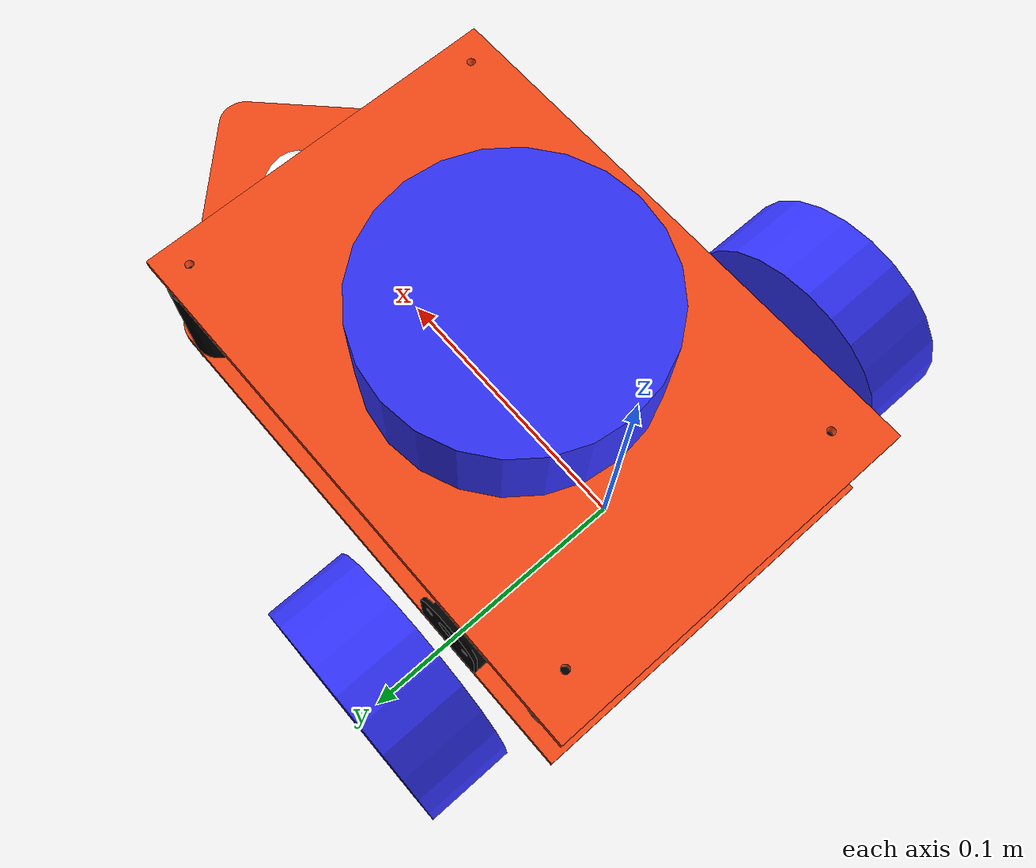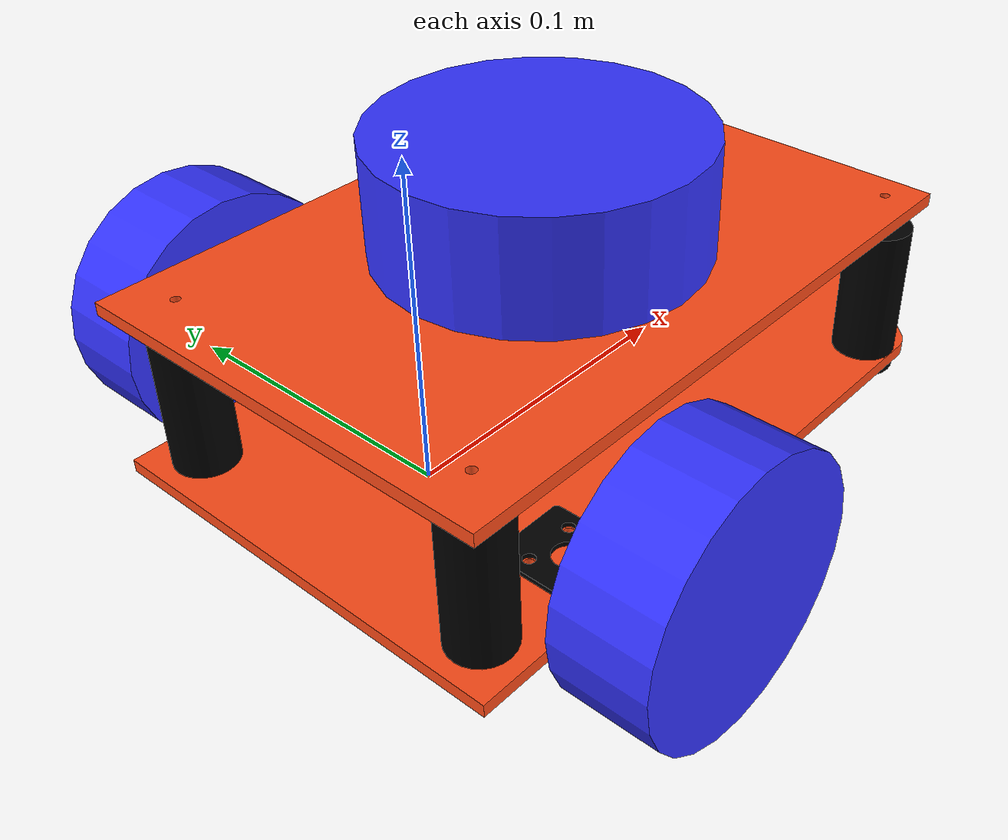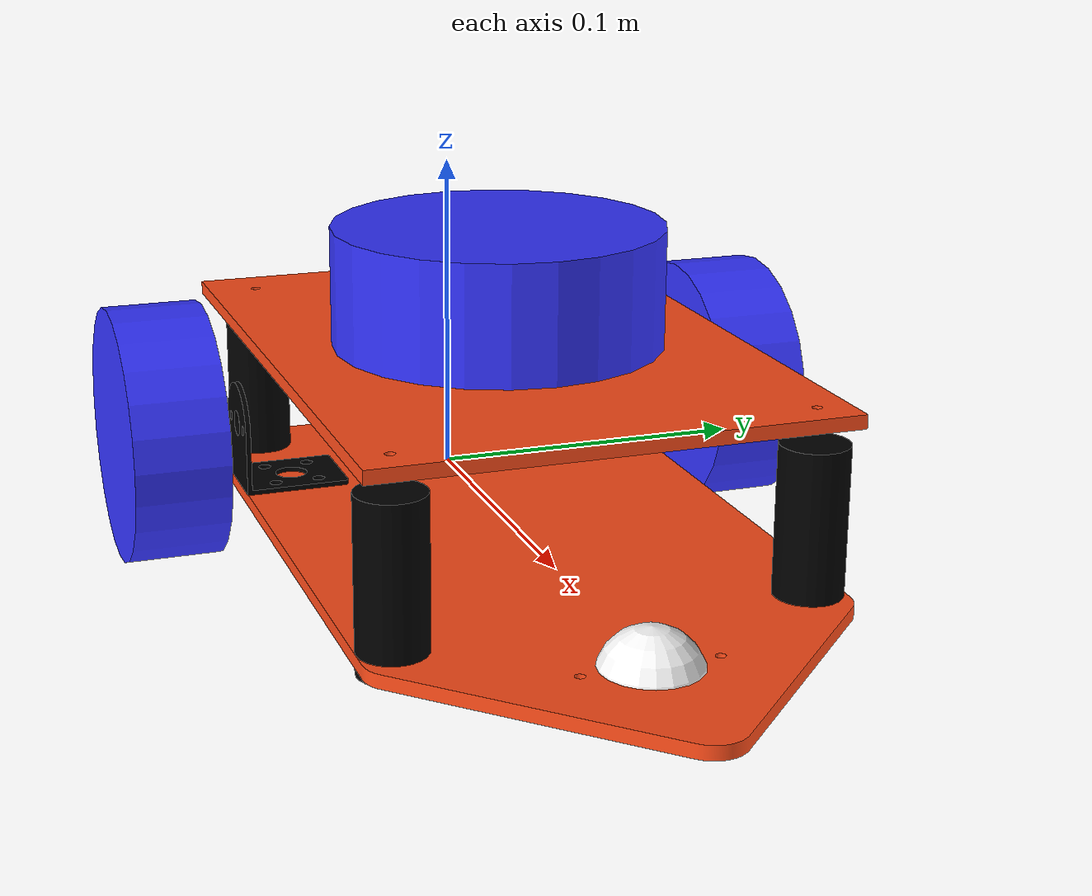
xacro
<?xml version="1.0"?>
<robot xmlns:xacro="http://www.ros.org/wiki/xacro"  name="robot">

    <xacro:arg name="use_ros2_control" default="true"/>
    <xacro:arg name="sim_mode" default="false"/>
    <xacro:if value="$(arg use_ros2_control)">
        <xacro:include filename="ros2_control.xacro" />
    </xacro:if>
    <xacro:unless value="$(arg use_ros2_control)">
        <xacro:include filename="gazebo_control.xacro" />
    </xacro:unless>
    <xacro:include filename="robot_core.xacro" />

</robot>

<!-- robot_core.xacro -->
<robot xmlns:xacro="http://www.ros.org/wiki/xacro" >

    <xacro:include filename="inertial_macros.xacro"/>

    <xacro:property name="chassis_length" value="0.26586"/>
    <xacro:property name="chassis_width" value="0.14"/>
    <xacro:property name="chassis_height" value="0.15"/>
    <xacro:property name="chassis_mass" value="1.0"/>
    <xacro:property name="wheel_radius" value="0.04"/>
    <xacro:property name="wheel_thickness" value="0.0293"/>
    <xacro:property name="wheel_mass" value="0.2"/>
    <xacro:property name="wheel_offset_x" value="0.05065"/>
    <xacro:property name="wheel_offset_y" value="0.08715"/>
    <xacro:property name="wheel_offset_z" value="0.02725"/>
    <xacro:property name="caster_wheel_radius" value="0.0205"/>
    <xacro:property name="caster_wheel_mass" value="0.1"/>
    <xacro:property name="tussenstuk_length" value="0.0055"/>
    <xacro:property name="tussenstuk_width" value="0.0055"/>
    <xacro:property name="tussenstuk_height" value="0.0715"/>

    <material name="white">
        <color rgba="1 1 1 1" />
    </material>

    <material name="orange">
        <color rgba="1 0.3 0.1 1"/>
    </material>

    <material name="blue">
        <color rgba="0.2 0.2 1 1"/>
    </material>

    <material name="black">
        <color rgba="0 0 0 1"/>
    </material>

    <!-- BASE LINK -->
    <link name="base_link">
    </link>
    <!-- footprint LINK -->
    <joint name="base_footprint_joint" type="fixed">
        <parent link="base_link"/>
        <child link="base_footprint"/>
        <origin xyz="0 0 0" rpy="0 0 0"/>
    </joint>
    <link name="base_footprint">
    </link>

    <!-- CHASSIS BOTTOM LINK -->
    <joint name="chassis_bottom_joint" type="fixed">
        <parent link="base_link"/>
        <child link="chassis_bottom"/>
        <origin xyz="0 0 0"/>
    </joint>

    <link name="chassis_bottom">
        <visual>
            <origin xyz="0.09435 0 0" rpy="0 0 ${pi}"/>
            <geometry>
                <mesh filename="file://$(find my_bot)/meshes/Onderstel.stl" scale="0.001 0.001 0.001"/>
            </geometry>
            <material name="orange"/>
        </visual>
        <collision>
            <origin xyz="0.09435 0 0" rpy="0 0 ${pi}"/>
            <geometry>
                <box size="0.3 0.14 0.01"/>
            </geometry>
        </collision>
        <xacro:inertial_box mass="0.072" x="${chassis_length}" y="${chassis_width}" z="${chassis_height}">
            <origin xyz="${chassis_length/2} 0 ${chassis_height/2}" rpy="0 0 0"/>
        </xacro:inertial_box>
    </link>

    <gazebo reference="chassis_bottom">
        <material>Gazebo/Wood</material>
    </gazebo>

    <!-- LEFT MOTOR BEUGEL LINK  -->
    <joint name="chassis_beugel_left_link" type="fixed">
        <parent link="base_link"/>
        <child link="chassis_beugel_left"/>
        <origin xyz="-0.013 -0.06875 0" rpy="1.57079632679 0.0 0.0"/>
    </joint>

    <link name="chassis_beugel_left">
        <visual>
            <origin xyz="0 0 0"/>
            <geometry>
                <mesh filename="file://$(find my_bot)/meshes/MotorBeugel.stl" scale="0.001 0.001 0.001"/>
            </geometry>
            <material name="black"/>
        </visual>
        <collision>
            <origin xyz="0 0 0"/>
            <geometry>
                <mesh filename="file://$(find my_bot)/meshes/MotorBeugel.stl" scale="0.001 0.001 0.001"/>
            </geometry>
        </collision>
        <xacro:inertial_box mass="0.053" x="0.200" y="0.0041" z="0.140">
            <origin xyz="0.100 0 0.070" rpy="0 0 0"/>
        </xacro:inertial_box>
    </link>

    <gazebo reference="chassis_beugel_left">
        <material>Gazebo/FlatBlack</material>
    </gazebo>

    <!-- RIGHT MOTOR BEUGEL LINK -->
    <joint name="chassis_beugel_right_link" type="fixed">
        <parent link="base_link"/>
        <child link="chassis_beugel_right"/>
        <origin xyz="0.013 0.06875 0" rpy="1.57079632679 0 3.14159265359"/>
    </joint>

    <link name="chassis_beugel_right">
        <visual>
            <origin xyz="0 0 0"/>
            <geometry>
                <mesh filename="file://$(find my_bot)/meshes/MotorBeugel.stl" scale="0.001 0.001 0.001"/>
            </geometry>
            <material name="black"/>
        </visual>
        <collision>
            <origin xyz="0 0 0"/>
            <geometry>
                <mesh filename="file://$(find my_bot)/meshes/MotorBeugel.stl" scale="0.001 0.001 0.001"/>
            </geometry>
        </collision>
        <xacro:inertial_box mass="0.053" x="0.200" y="0.0041" z="0.140">
            <origin xyz="0.100 0 0.070" rpy="0 0 0"/>
        </xacro:inertial_box>
    </link>

    <gazebo reference="chassis_beugel_right">
        <material>Gazebo/FlatBlack</material>
    </gazebo>

    <!-- CHASSIS TUSSEN LINK 1 -->
    <joint name="chassis_tussen_one_joint" type="fixed">
        <parent link="base_link"/>
        <child link="chassis_tussen_one"/>
        <origin xyz="-0.03565 0.055 -0.006"/>
    </joint>

    <link name="chassis_tussen_one">
        <visual>
            <origin xyz="0 0 0.025"/>
            <geometry>
                <cylinder radius="0.01" length= "0.05"/>
            </geometry>
            <material name="black"/>
        </visual>
        <collision>
            <origin xyz="0 0 0.025"/>
            <geometry>
                <cylinder radius="0.01" length= "0.05"/>
            </geometry>
        </collision>
        <xacro:inertial_box mass="0.004" x="${tussenstuk_length}" y="${tussenstuk_width}" z="${tussenstuk_height}">
            <origin xyz="${tussenstuk_length/2} 0 ${tussenstuk_height/2}" rpy="0 0 0"/>
        </xacro:inertial_box>
    </link>

    <gazebo reference="chassis_tussen_one">
        <material>Gazebo/Grey</material>
    </gazebo>

    <!-- CHASSIS TUSSEN LINK 2 -->
    <joint name="chassis_tussen_two_joint" type="fixed">
        <parent link="base_link"/>
        <child link="chassis_tussen_two"/>
        <origin xyz="-0.03565 -0.055 -0.006"/>
    </joint>

    <link name="chassis_tussen_two">
        <visual>
            <origin xyz="0 0 0.025"/>
            <geometry>
                <cylinder radius="0.01" length= "0.05"/>
            </geometry>
            <material name="black"/>
        </visual>
        <collision>
            <origin xyz="0 0 0"/>
            <geometry>
                <mesh filename="file://$(find my_bot)/meshes/Tussenstuk.stl" scale="0.001 0.001 0.001"/>
            </geometry>
        </collision>
        <xacro:inertial_box mass="0.004" x="${tussenstuk_length}" y="${tussenstuk_width}" z="${tussenstuk_height}">
            <origin xyz="${tussenstuk_length/2} 0 ${tussenstuk_height/2}" rpy="0 0 0"/>
        </xacro:inertial_box>
    </link>

    <gazebo reference="chassis_tussen_two">
        <material>Gazebo/Grey</material>
    </gazebo>

    <!-- CHASSIS TUSSEN LINK 3 -->
    <joint name="chassis_tussen_three_joint" type="fixed">
        <parent link="base_link"/>
        <child link="chassis_tussen_three"/>
        <origin xyz="0.13935 0.060 -0.006"/>
    </joint>

    <link name="chassis_tussen_three">
        <visual>
            <origin xyz="0 0 0.025"/>
            <geometry>
                <cylinder radius="0.01" length= "0.05"/>
            </geometry>
            <material name="black"/>
        </visual>
        <collision>
            <origin xyz="0 0 0.025"/>
            <geometry>
                <cylinder radius="0.01" length= "0.05"/>
            </geometry>
        </collision>
        <xacro:inertial_box mass="0.004" x="${tussenstuk_length}" y="${tussenstuk_width}" z="${tussenstuk_height}">
            <origin xyz="${tussenstuk_length/2} 0 ${tussenstuk_height/2}" rpy="0 0 0"/>
        </xacro:inertial_box>
    </link>

    <gazebo reference="chassis_tussen_three">
        <material>Gazebo/Grey</material>
    </gazebo>

    <!-- CHASSIS TUSSEN LINK 4 -->
    <joint name="chassis_tussen_four_joint" type="fixed">
        <parent link="base_link"/>
        <child link="chassis_tussen_four"/>
        <origin xyz="0.13935 -0.060 -0.006"/>
    </joint>

    <link name="chassis_tussen_four">
        <visual>
            <origin xyz="0 0 0.025"/>
            <geometry>
                <cylinder radius="0.01" length= "0.05"/>
            </geometry>
            <material name="black"/>
        </visual>
        <collision>
            <origin xyz="0 0 0.025"/>
            <geometry>
                <cylinder radius="0.01" length= "0.05"/>
            </geometry>
        </collision>
        <xacro:inertial_box mass="0.004" x="${tussenstuk_length}" y="${tussenstuk_width}" z="${tussenstuk_height}">
            <origin xyz="${tussenstuk_length/2} 0 ${tussenstuk_height/2}" rpy="0 0 0"/>
        </xacro:inertial_box>
    </link>

    <gazebo reference="chassis_tussen_four">
        <material>Gazebo/Grey</material>
    </gazebo>

    <!-- CHASSIS MID LINK -->
    <joint name="chassis_mid_joint" type="fixed">
        <parent link="base_link"/>
        <child link="chassis_mid"/>
        <origin xyz="0.04935 0 0.0541" rpy="0 0 ${pi}"/>
    </joint>

    <link name="chassis_mid">
        <visual>
            <origin xyz="0 0 0"/>
            <geometry>
                <mesh filename="file://$(find my_bot)/meshes/Mid.stl" scale="0.001 0.001 0.001"/>
            </geometry>
            <material name="orange"/>
        </visual>
        <collision>
            <origin xyz="0 0 0"/>
            <geometry>
                <box size="0.3 0.14 0.01"/>
            </geometry>
        </collision>
        <xacro:inertial_box mass="0.053" x="0.200" y="0.0041" z="0.140">
            <origin xyz="0.100 0 0.070" rpy="0 0 0"/>
        </xacro:inertial_box>
    </link>

    <gazebo reference="chassis_mid">
        <material>Gazebo/Wood</material>
    </gazebo>

    <!-- LEFT WHEEL LINK -->
    <joint name="right_wheel_joint" type="continuous">
        <parent link="chassis_beugel_left"/>
        <child link="left_wheel"/>
        <origin xyz="0.013 0.02 0.026" rpy="0 ${pi} 0" />
        <axis xyz="0 0 1"/>
    </joint>

    <link name="right_wheel">
        <visual>
            <geometry>
                <cylinder radius="${wheel_radius}" length="${wheel_thickness}"/>
            </geometry>
            <material name="blue"/>
        </visual>
        <collision>
            <geometry>
                <sphere radius="${wheel_radius}"/>
            </geometry>
        </collision>
        <xacro:inertial_cylinder mass="${wheel_mass}" length="${wheel_thickness}" radius="${wheel_radius}">
            <origin xyz="0 0 0" rpy="0 0 0"/>
        </xacro:inertial_cylinder>
    </link>

    <gazebo reference="right_wheel">
        <material>Gazebo/RedBright</material>
    </gazebo>

    <!-- RIGHT WHEEL LINK -->
    <joint name="left_wheel_joint" type="continuous">
        <parent link="chassis_beugel_right"/>
        <child link="right_wheel"/>
        <origin xyz="0.013 0.02 0.026" rpy="0 0 0" />
        <axis xyz="0 0 1"/>
    </joint>

    <link name="left_wheel">
        <visual>
            <geometry>
                <cylinder radius="${wheel_radius}" length="${wheel_thickness}"/>
            </geometry>
            <material name="blue"/>
        </visual>
        <collision>
            <geometry>
                <sphere radius="${wheel_radius}"/>
            </geometry>
        </collision>
        <xacro:inertial_cylinder mass="${wheel_mass}" length="${wheel_thickness}" radius="${wheel_radius}">
            <origin xyz="0 0 0" rpy="0 0 0"/>
        </xacro:inertial_cylinder>
    </link>

    <gazebo reference="left_wheel">
        <material>Gazebo/RedBright</material>
    </gazebo>

    <!-- CASTER WHEEL LINK -->
    <joint name="caster_wheel_joint" type="fixed">
        <parent link="chassis_bottom"/>
        <child link="caster_wheel"/>
        <origin xyz="0.16935 0 -0.0041" rpy="0 0 1.57079632679"/>
    </joint>

    <link name="caster_wheel">
        <visual>
            <geometry>
                <sphere radius="0.015"/>
            </geometry>
            <material name="white"/>
        </visual>
        <collision>
            <geometry>
                <sphere radius="0.015"/>
            </geometry>
        </collision>
        <xacro:inertial_sphere mass="${caster_wheel_mass}" radius="${caster_wheel_radius}">
            <origin xyz="0 0 0" rpy="0 0 0"/>
        </xacro:inertial_sphere>
    </link>

    <gazebo reference="caster_wheel">
        <material>Gazebo/White</material>
        <mu1 value="0.001"/>
        <mu2 value="0.001"/>
    </gazebo>
    <joint name="laser_joint" type="fixed">
        <parent link="chassis_bottom"/>
        <child link="laser_frame"/>
        <origin xyz="0.05 0 0.07" rpy="0 0 ${pi/2}"/>
    </joint>

    <link name="laser_frame">
        <visual>
            <geometry>
                <cylinder radius="0.05" length="0.04"/>
            </geometry>
            <material name="blue"/>
        </visual>
        <collision>
            <geometry>
                <cylinder radius="0.05" length="0.04"/>
            </geometry>
        </collision>
        <xacro:inertial_cylinder mass="0.1" length="0.04" radius="0.05">
            <origin xyz="0 0 0" rpy="0 0 0"/>
        </xacro:inertial_cylinder>

    </link>

    <gazebo reference="laser_frame">
        <material>Gazebo/Blue</material>

        <sensor name="laser" type="ray">
            <pose> 0 0 0 0 0 0 </pose>
            <visualize>true</visualize>
            <update_rate>10</update_rate>
            <ray>
                <scan>
                    <horizontal>
                        <samples>360</samples>
                        <min_angle>-3.14</min_angle>
                        <max_angle>3.14</max_angle>
                    </horizontal>
                </scan>
                <range>
                    <min>0.3</min>
                    <max>12</max>
                </range>
            </ray>
            <plugin name="laser_controller" filename="libgazebo_ros_ray_sensor.so">
                <ros>
                    <remapping>~/out:=scan</remapping>
                </ros>
                <output_type>sensor_msgs/LaserScan</output_type>
                <frame_name>laser_frame</frame_name>
            </plugin>
        </sensor>
    </gazebo>

</robot>
